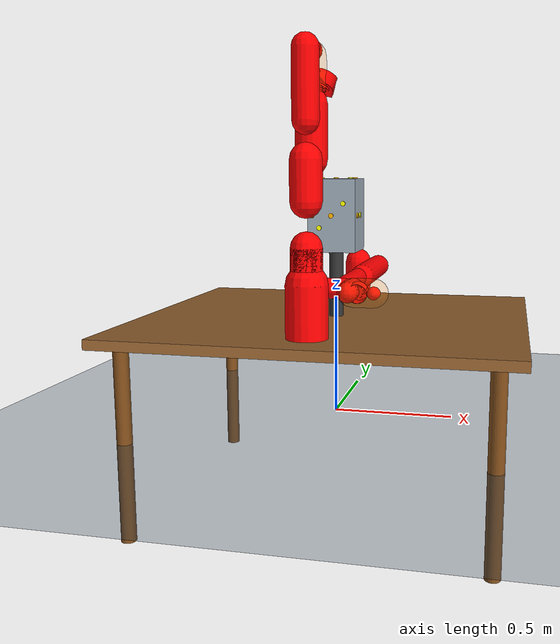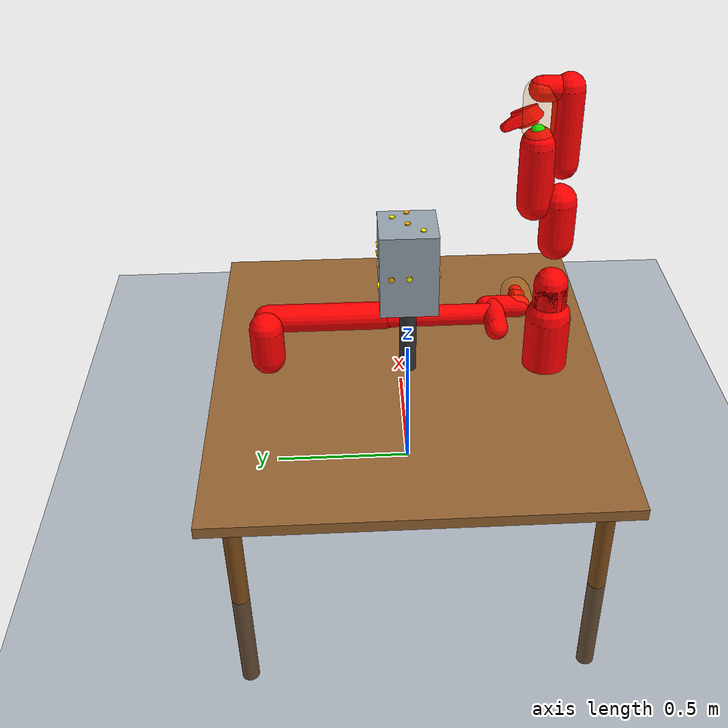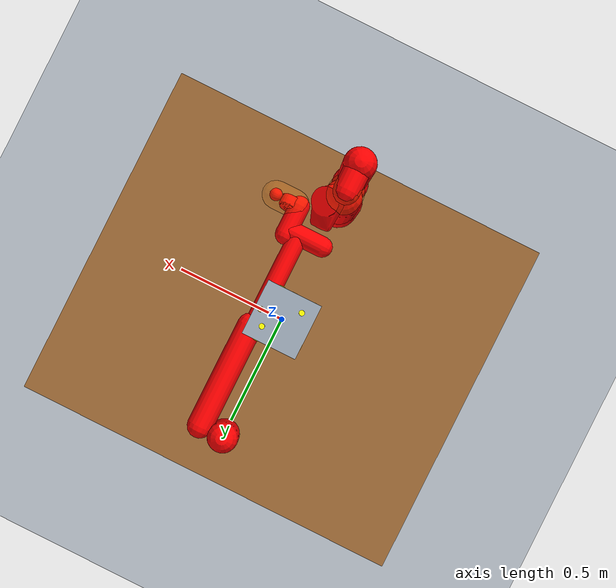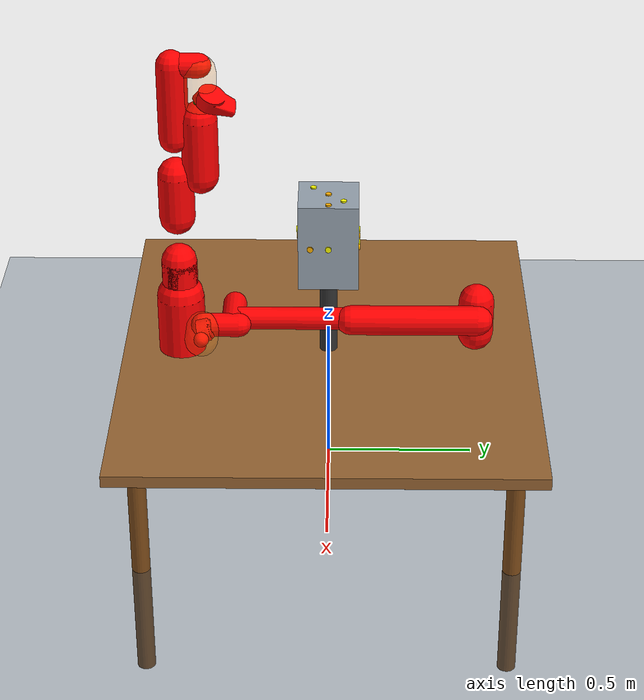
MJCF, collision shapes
<mujoco model="dual_arm_ur5e_fr3">
  <!-- 编译器设置 -->
  <compiler angle="radian" autolimits="true"/>

  <!-- 积分器设置 -->
  <option integrator="implicitfast" timestep="0.002"/>

  <!-- 统计信息：设置场景中心和范围 -->
  <statistic center="0 0 0.5" extent="2"/>

  <!-- 可视化设置 -->
  <visual>
    <headlight diffuse="0.6 0.6 0.6" ambient="0.3 0.3 0.3" specular="0 0 0"/>
    <rgba haze="0.15 0.25 0.35 1"/>
    <global azimuth="150" elevation="-30"/>
  </visual>

  <!-- 资源定义 -->
  <asset>
    <!-- 天空盒纹理 -->
    <texture type="skybox" builtin="gradient" rgb1="0.3 0.5 0.7" rgb2="0 0 0" width="512" height="3072"/>

    <!-- 地面纹理 -->
    <texture type="2d" name="groundplane" builtin="checker" mark="edge"
             rgb1="0.2 0.3 0.4" rgb2="0.1 0.2 0.3" markrgb="0.8 0.8 0.8" width="300" height="300"/>
    <material name="groundplane" texture="groundplane" texuniform="true" texrepeat="5 5" reflectance="0.2"/>

    <!-- 工作台纹理 -->
    <material name="table_mat" rgba="0.6 0.4 0.2 1"/>
    <material name="target_mat" rgba="1 0.2 0.2 0.6"/>

    <!-- 金属材质 -->
    <material name="metal_mat" rgba="0.6 0.65 0.7 1" specular="0.8" shininess="0.8"/>
    <material name="box_mat" rgba="0.2 0.6 0.8 1"/>
  </asset>

  <!-- UR5e 机械臂配置 (放置在左侧) -->
  <default>
    <default class="ur5e">
      <material specular="0.5" shininess="0.25"/>
      <joint axis="0 1 0" range="-6.28319 6.28319" armature="0.1"/>
      <general gaintype="fixed" biastype="affine" ctrlrange="-6.2831 6.2831"
               gainprm="2000" biasprm="0 -2000 -400" forcerange="-150 150"/>
      <default class="size3">
        <default class="size3_limited">
          <joint range="-3.1415 3.1415"/>
          <general ctrlrange="-3.1415 3.1415"/>
        </default>
      </default>
      <default class="size1">
        <general gainprm="500" biasprm="0 -500 -100" forcerange="-28 28"/>
      </default>
      <default class="visual">
        <geom type="mesh" contype="0" conaffinity="0" group="2"/>
      </default>
      <default class="collision">
        <geom type="capsule" group="3" rgba="1 0 0 0.2"/>
        <default class="eef_collision">
          <geom type="cylinder" rgba="1 0 0 0.2"/>
        </default>
      </default>
      <site size="0.02" rgba="1 0 0 1" group="0"/>
    </default>
  </default>

  <!-- FR3 机械臂配置 (放置在右侧) -->
  <default>
    <default class="fr3">
      <joint damping="0.21" armature="0.195" frictionloss="1.137"/>
      <default class="visual_fr3">
        <geom type="mesh" group="2" contype="0" conaffinity="0"/>
      </default>
      <default class="collision_fr3">
        <geom type="capsule" group="3" condim="3" contype="1" conaffinity="1"/>
      </default>
      <site size="0.02" rgba="0 1 0 1" group="0"/>
    </default>
  </default>

  <!-- UR5e 网格资源 -->
  <asset>
    <material class="ur5e" name="ur5e_black" rgba="0.033 0.033 0.033 1"/>
    <material class="ur5e" name="ur5e_jointgray" rgba="0.278 0.278 0.278 1"/>
    <material class="ur5e" name="ur5e_linkgray" rgba="0.82 0.82 0.82 1"/>
    <material class="ur5e" name="ur5e_urblue" rgba="0.49 0.678 0.8 1"/>

    <mesh file="universal_robots_ur5e/assets/base_0.obj"/>
    <mesh file="universal_robots_ur5e/assets/base_1.obj"/>
    <mesh file="universal_robots_ur5e/assets/shoulder_0.obj"/>
    <mesh file="universal_robots_ur5e/assets/shoulder_1.obj"/>
    <mesh file="universal_robots_ur5e/assets/shoulder_2.obj"/>
    <mesh file="universal_robots_ur5e/assets/upperarm_0.obj"/>
    <mesh file="universal_robots_ur5e/assets/upperarm_1.obj"/>
    <mesh file="universal_robots_ur5e/assets/upperarm_2.obj"/>
    <mesh file="universal_robots_ur5e/assets/upperarm_3.obj"/>
    <mesh file="universal_robots_ur5e/assets/forearm_0.obj"/>
    <mesh file="universal_robots_ur5e/assets/forearm_1.obj"/>
    <mesh file="universal_robots_ur5e/assets/forearm_2.obj"/>
    <mesh file="universal_robots_ur5e/assets/forearm_3.obj"/>
    <mesh file="universal_robots_ur5e/assets/wrist1_0.obj"/>
    <mesh file="universal_robots_ur5e/assets/wrist1_1.obj"/>
    <mesh file="universal_robots_ur5e/assets/wrist1_2.obj"/>
    <mesh file="universal_robots_ur5e/assets/wrist2_0.obj"/>
    <mesh file="universal_robots_ur5e/assets/wrist2_1.obj"/>
    <mesh file="universal_robots_ur5e/assets/wrist2_2.obj"/>
    <mesh file="universal_robots_ur5e/assets/wrist3.obj"/>
    <mesh name="wrist3_vhacd" file="universal_robots_ur5e/assets/wrist3_vhacd.obj"/>
  </asset>

  <!-- FR3 网格资源 -->
  <asset>
    <material name="fr3_black" rgba=".2 .2 .2 1"/>
    <material name="fr3_white" rgba="1 1 1 1"/>
    <material name="fr3_red" rgba="1 0.072272 0.039546 1"/>
    <material name="fr3_gray" rgba="0.863156 0.863156 0.863157 1"/>

    <mesh file="franka_fr3/assets/link0_0.obj"/>
    <mesh file="franka_fr3/assets/link0_1.obj"/>
    <mesh file="franka_fr3/assets/link0_2.obj"/>
    <mesh file="franka_fr3/assets/link0_3.obj"/>
    <mesh file="franka_fr3/assets/link0_4.obj"/>
    <mesh file="franka_fr3/assets/link0_5.obj"/>
    <mesh file="franka_fr3/assets/link0_6.obj"/>
    <mesh name="link0_coll" file="franka_fr3/assets/link0.stl"/>
    <mesh file="franka_fr3/assets/link1.obj"/>
    <mesh file="franka_fr3/assets/link2.obj"/>
    <mesh file="franka_fr3/assets/link3_0.obj"/>
    <mesh file="franka_fr3/assets/link3_1.obj"/>
    <mesh file="franka_fr3/assets/link4_0.obj"/>
    <mesh file="franka_fr3/assets/link4_1.obj"/>
    <mesh file="franka_fr3/assets/link5_0.obj"/>
    <mesh file="franka_fr3/assets/link5_1.obj"/>
    <mesh file="franka_fr3/assets/link5_2.obj"/>
    <mesh file="franka_fr3/assets/link6_0.obj"/>
    <mesh file="franka_fr3/assets/link6_1.obj"/>
    <mesh file="franka_fr3/assets/link6_2.obj"/>
    <mesh file="franka_fr3/assets/link6_3.obj"/>
    <mesh file="franka_fr3/assets/link6_4.obj"/>
    <mesh file="franka_fr3/assets/link6_5.obj"/>
    <mesh file="franka_fr3/assets/link6_6.obj"/>
    <mesh file="franka_fr3/assets/link6_7.obj"/>
    <mesh file="franka_fr3/assets/link7_0.obj"/>
    <mesh file="franka_fr3/assets/link7_1.obj"/>
    <mesh file="franka_fr3/assets/link7_2.obj"/>
    <mesh file="franka_fr3/assets/link7_3.obj"/>
    <mesh name="link7_vhacd" file="franka_fr3/assets/link7_vhacd.obj"/>
  </asset>

  <!-- 世界体定义 -->
  <worldbody>
    <!-- 照明 -->
    <light pos="0 0 2.5" dir="0 0 -1" directional="true"/>
    <light pos="1 1 2" dir="-1 -1 -1" directional="false"/>

    <!-- 地面 -->
    <geom name="floor" size="0 0 0.05" type="plane" material="groundplane"/>

    <!-- 工作台 -->
    <body name="table" pos="0 0 0">
      <geom name="table_top" type="box" size="0.8 0.7 0.02" pos="0 0 0.4" material="table_mat"/>
      <geom name="table_leg1" type="cylinder" size="0.03 0.4" pos="0.7 0.6 0" rgba="0.5 0.3 0.1 1"/>
      <geom name="table_leg2" type="cylinder" size="0.03 0.4" pos="0.7 -0.6 0" rgba="0.5 0.3 0.1 1"/>
      <geom name="table_leg3" type="cylinder" size="0.03 0.4" pos="-0.7 0.6 0" rgba="0.5 0.3 0.1 1"/>
      <geom name="table_leg4" type="cylinder" size="0.03 0.4" pos="-0.7 -0.6 0" rgba="0.5 0.3 0.1 1"/>
    </body>

    <!-- 中央工件：待作业的多面体刚体 -->
    <body name="workpiece" pos="0 0 0.85">
      <geom name="workpiece_geom" type="box" size="0.1 0.1 0.15" material="metal_mat" contype="1" conaffinity="1"/>

      <geom name="workpiece_support" type="cylinder" size="0.03 0.14" pos="0 0 -0.29" rgba="0.2 0.2 0.2 1" contype="0" conaffinity="0"/>

      <site name="target_top_1" pos="0.05 0.05 0.15" euler="0 0 0" type="cylinder" size="0.01 0.005" rgba="1 1 0 1" group="0"/>
      <site name="target_top_2" pos="-0.05 -0.05 0.15" euler="0 0 0" type="cylinder" size="0.01 0.005" rgba="1 1 0 1" group="0"/>
      <site name="target_top_3" pos="0.0 0.0 0.15" euler="0 0 0" type="cylinder" size="0.01 0.005" rgba="1 0.7 0 1" group="0"/>
      <site name="target_top_4" pos="0.08 0.0 0.15" euler="0 0 0" type="cylinder" size="0.01 0.005" rgba="1 0.7 0 1" group="0"/>

      <site name="target_front_1" pos="0.05 0.1 0.05" euler="1.5708 0 0" type="cylinder" size="0.01 0.005" rgba="1 1 0 1" group="0"/>
      <site name="target_front_2" pos="-0.05 0.1 -0.05" euler="1.5708 0 0" type="cylinder" size="0.01 0.005" rgba="1 1 0 1" group="0"/>
      <site name="target_front_3" pos="0.0 0.1 0.0" euler="1.5708 0 0" type="cylinder" size="0.01 0.005" rgba="1 0.7 0 1" group="0"/>
      <site name="target_front_4" pos="0.08 0.1 0.0" euler="1.5708 0 0" type="cylinder" size="0.01 0.005" rgba="1 0.7 0 1" group="0"/>

      <site name="target_back_1" pos="0.05 -0.1 0.05" euler="-1.5708 0 0" type="cylinder" size="0.01 0.005" rgba="1 1 0 1" group="0"/>
      <site name="target_back_2" pos="-0.05 -0.1 -0.05" euler="-1.5708 0 0" type="cylinder" size="0.01 0.005" rgba="1 1 0 1" group="0"/>
      <site name="target_back_3" pos="0.0 -0.1 0.0" euler="-1.5708 0 0" type="cylinder" size="0.01 0.005" rgba="1 0.7 0 1" group="0"/>
      <site name="target_back_4" pos="-0.08 -0.1 0.0" euler="-1.5708 0 0" type="cylinder" size="0.01 0.005" rgba="1 0.7 0 1" group="0"/>

      <site name="target_left_1" pos="-0.1 0 0" euler="0 -1.5708 0" type="cylinder" size="0.01 0.005" rgba="1 1 0 1" group="0"/>
      <site name="target_right_1" pos="0.1 0 0" euler="0 -1.5708 0" type="cylinder" size="0.01 0.005" rgba="1 1 0 1" group="0"/>
      <site name="target_left_2" pos="-0.1 0.06 0.0" euler="0 -1.5708 0" type="cylinder" size="0.01 0.005" rgba="1 0.7 0 1" group="0"/>
      <site name="target_right_2" pos="0.1 -0.06 0.0" euler="0 -1.5708 0" type="cylinder" size="0.01 0.005" rgba="1 0.7 0 1" group="0"/>

      <site name="target_bottom_1" pos="0.05 0.05 -0.15" euler="3.14159 0 0" type="cylinder" size="0.01 0.005" rgba="1 1 0 1" group="0"/>
      <site name="target_bottom_2" pos="-0.05 -0.05 -0.15" euler="3.14159 0 0" type="cylinder" size="0.01 0.005" rgba="1 1 0 1" group="0"/>
    </body>

    <!-- UR5e 机械臂 (左侧，面向工作台中心) -->
    <body name="ur5e_base" pos="0 0.50 0.42" euler="0 0 -1.5708" childclass="ur5e">
      <inertial mass="4.0" pos="0 0 0" diaginertia="0.00443333156 0.00443333156 0.0072"/>
      <geom mesh="base_0" material="ur5e_black" class="visual"/>
      <geom mesh="base_1" material="ur5e_jointgray" class="visual"/>
      <body name="ur5e_shoulder_link" pos="0 0 0.163">
        <inertial mass="3.7" pos="0 0 0" diaginertia="0.0102675 0.0102675 0.00666"/>
        <joint name="ur5e_shoulder_pan_joint" class="size3" axis="0 0 1"/>
        <geom mesh="shoulder_0" material="ur5e_urblue" class="visual"/>
        <geom mesh="shoulder_1" material="ur5e_black" class="visual"/>
        <geom mesh="shoulder_2" material="ur5e_jointgray" class="visual"/>
        <geom class="collision" size="0.06 0.06" pos="0 0 -0.04"/>
        <body name="ur5e_upper_arm_link" pos="0 0.138 0" quat="1 0 1 0">
          <inertial mass="8.393" pos="0 0 0.2125" diaginertia="0.133886 0.133886 0.0151074"/>
          <joint name="ur5e_shoulder_lift_joint" class="size3"/>
          <geom mesh="upperarm_0" material="ur5e_linkgray" class="visual"/>
          <geom mesh="upperarm_1" material="ur5e_black" class="visual"/>
          <geom mesh="upperarm_2" material="ur5e_jointgray" class="visual"/>
          <geom mesh="upperarm_3" material="ur5e_urblue" class="visual"/>
          <geom class="collision" fromto="0 -0.04 0 0 -0.04 0.425" size="0.05"/>
          <body name="ur5e_forearm_link" pos="0 -0.131 0.425">
            <inertial mass="2.275" pos="0 0 0.196" diaginertia="0.0311796 0.0311796 0.004095"/>
            <joint name="ur5e_elbow_joint" class="size3"/>
            <geom mesh="forearm_0" material="ur5e_urblue" class="visual"/>
            <geom mesh="forearm_1" material="ur5e_linkgray" class="visual"/>
            <geom mesh="forearm_2" material="ur5e_black" class="visual"/>
            <geom mesh="forearm_3" material="ur5e_jointgray" class="visual"/>
            <geom class="collision" fromto="0 0.08 0 0 0.08 0.392" size="0.038"/>
            <body name="ur5e_wrist_1_link" pos="0 0 0.392">
              <inertial mass="1.219" pos="0 0.127 0" diaginertia="0.0025599 0.0025599 0.0021942"/>
              <joint name="ur5e_wrist_1_joint" class="size1" axis="0 1 0"/>
              <geom mesh="wrist1_0" material="ur5e_black" class="visual"/>
              <geom mesh="wrist1_1" material="ur5e_urblue" class="visual"/>
              <geom mesh="wrist1_2" material="ur5e_jointgray" class="visual"/>
              <geom class="collision" pos="0 0.05 0" quat="0.707107 0.707107 0 0" size="0.04 0.07"/>
              <body name="ur5e_wrist_2_link" pos="0 0.127 0">
                <inertial mass="1.219" pos="0 0 0.1" diaginertia="0.0025599 0.0025599 0.0021942"/>
                <joint name="ur5e_wrist_2_joint" class="size1" axis="0 0 1"/>
                <geom mesh="wrist2_0" material="ur5e_black" class="visual"/>
                <geom mesh="wrist2_1" material="ur5e_urblue" class="visual"/>
                <geom mesh="wrist2_2" material="ur5e_jointgray" class="visual"/>
                <geom class="collision" size="0.04 0.06" pos="0 0 0.04"/>
                <body name="ur5e_wrist_3_link" pos="0 0 0.1">
                  <inertial mass="0.1879" pos="0 0.0771683 0" quat="0.707107 0 0 0.707107"
                    diaginertia="0.000132134 9.90863e-05 9.90863e-05"/>
                  <joint name="ur5e_wrist_3_joint" class="size1" axis="0 1 0"/>
                  <geom material="ur5e_linkgray" mesh="wrist3" class="visual"/>
                  <geom name="ur5e_wrist3_vhacd_col" class="collision" type="mesh" mesh="wrist3_vhacd"
                        pos="0.015085743 0.039539305 0.065289590"
                        quat="0.700903278 -0.704282049 0.080116196 0.079390086"
                        rgba="1 0 0 0.25"/>
                  <geom name="ur5e_wrist3_capsule_col" class="collision" type="capsule"
                    fromto="0 0.02 0  0 0.10 0" size="0.055"
                    contype="0" conaffinity="0" rgba="1 0.5 0 0.18"/>
                  <site name="ur5e_ee_site" pos="0 0.1 0" euler="-1.5708 0 0" size="0.025" rgba="1 0 0 1" group="0"/>
                </body>
              </body>
            </body>
          </body>
        </body>
      </body>
    </body>

    <!-- FR3 机械臂 (右侧，面向工作台中心) -->
    <body name="fr3_base" pos="0 -0.50 0.42" euler="0 0 1.5708" childclass="fr3">
      <body name="fr3_link0">
        <geom mesh="link0_0" material="fr3_black" class="visual_fr3"/>
        <geom mesh="link0_1" material="fr3_white" class="visual_fr3"/>
        <geom mesh="link0_2" material="fr3_white" class="visual_fr3"/>
        <geom mesh="link0_3" material="fr3_white" class="visual_fr3"/>
        <geom mesh="link0_4" material="fr3_white" class="visual_fr3"/>
        <geom mesh="link0_5" material="fr3_red" class="visual_fr3"/>
        <geom mesh="link0_6" material="fr3_black" class="visual_fr3"/>
        <!-- 碰撞胶囊体 -->
        <geom name="fr3_link0_col" class="collision_fr3" type="capsule" size="0.08" fromto="0 0 0  0 0 0.2" rgba="1 0 0 0.2"/>
        <body name="fr3_link1" pos="0 0 0.333">
          <inertial pos="0.000206 -0.00067 0.067048" quat="0.388082 0.653008 -0.647363 0.0882461"
            mass="4.970684" diaginertia="0.70696 0.70536 0.00954"/>
          <joint name="fr3_joint1" axis="0 0 1" range="-2.7437 2.7437"/>
          <geom material="fr3_white" mesh="link1" class="visual_fr3"/>
          <!-- 碰撞胶囊体 -->
          <geom name="fr3_link1_col" class="collision_fr3" type="capsule" size="0.06" fromto="0 0 0  0 0 -0.19" rgba="1 0 0 0.2"/>
          <body name="fr3_link2" quat="1 -1 0 0">
            <inertial pos="-0.000197 -0.033735 0.028718" quat="0.934982 0.000916 -0.354607 0.00285"
              mass="0.646926" diaginertia="0.00798 0.00756 0.00135"/>
            <joint name="fr3_joint2" axis="0 0 1" range="-1.7837 1.7837"/>
            <geom material="fr3_white" mesh="link2" class="visual_fr3"/>
            <!-- 碰撞胶囊体 -->
            <geom name="fr3_link2_col" class="collision_fr3" type="capsule" size="0.06" fromto="0 0 0  0 0.2 0" rgba="1 0 0 0.2"/>
            <body name="fr3_link3" pos="0 -0.316 0" quat="1 1 0 0">
              <inertial pos="0.026947 0.029724 -0.069176" quat="0.959011 -0.277741 0.0528642 0.0155736"
                mass="3.228604" diaginertia="0.0372 0.036 0.00506"/>
              <joint name="fr3_joint3" axis="0 0 1" range="-2.9007 2.9007"/>
              <geom mesh="link3_0" material="fr3_white" class="visual_fr3"/>
              <geom mesh="link3_1" material="fr3_white" class="visual_fr3"/>
              <!-- 碰撞胶囊体 -->
              <geom name="fr3_link3_col" class="collision_fr3" type="capsule" size="0.06" fromto="0 0 0  0 0 -0.15" rgba="1 0 0 0.2"/>
              <body name="fr3_link4" pos="0.0825 0 0" quat="1 1 0 0">
                <inertial pos="-0.053043 0.104432 0.026687" quat="0.920992 0.380087 -0.0891638 0.00429838"
                  mass="3.587895" diaginertia="0.0255 0.0252 0.00696"/>
                <joint name="fr3_joint4" axis="0 0 1" range="-3.0421 -0.1518"/>
                <geom mesh="link4_0" material="fr3_white" class="visual_fr3"/>
                <geom mesh="link4_1" material="fr3_white" class="visual_fr3"/>
                <!-- 碰撞胶囊体 -->
                <geom name="fr3_link4_col" class="collision_fr3" type="capsule" size="0.06" fromto="0 0 0  0 0.2 0" rgba="1 0 0 0.2"/>
                <body name="fr3_link5" pos="-0.0825 0.384 0" quat="1 -1 0 0">
                  <inertial pos="0.000113 0.0448 -0.038482" quat="0.722794 0.003309 0.00406 0.691047"
                    mass="1.225946" diaginertia="0.0358 0.0348 0.00128"/>
                  <joint name="fr3_joint5" axis="0 0 1" range="-2.8065 2.8065" damping="0.168" armature="0.156" frictionloss="0.909"/>
                  <geom mesh="link5_0" material="fr3_white" class="visual_fr3"/>
                  <geom mesh="link5_1" material="fr3_white" class="visual_fr3"/>
                  <geom mesh="link5_2" material="fr3_gray" class="visual_fr3"/>
                  <!-- 碰撞胶囊体 -->
                  <geom name="fr3_link5_col" class="collision_fr3" type="capsule" size="0.05" fromto="0 0 0  0 0 -0.25" rgba="1 0 0 0.2"/>
                  <body name="fr3_link6" quat="1 1 0 0">
                    <inertial pos="0.051019 0.009112 0.010635" quat="0.474046 0.880129 -0.00493805 0.0172025"
                      mass="1.666555" diaginertia="0.00457 0.00426 0.00313"/>
                    <joint name="fr3_joint6" axis="0 0 1" range="0.5445 4.5169" damping="0.168" armature="0.156" frictionloss="0.909"/>
                    <geom mesh="link6_0" material="fr3_white" class="visual_fr3"/>
                    <geom mesh="link6_1" material="fr3_white" class="visual_fr3"/>
                    <geom mesh="link6_2" material="fr3_gray" class="visual_fr3"/>
                    <geom mesh="link6_3" material="fr3_gray" class="visual_fr3"/>
                    <geom mesh="link6_4" material="fr3_black" class="visual_fr3"/>
                    <geom mesh="link6_5" material="fr3_white" class="visual_fr3"/>
                    <geom mesh="link6_6" material="fr3_gray" class="visual_fr3"/>
                    <geom mesh="link6_7" material="fr3_black" class="visual_fr3"/>
                    <!-- 碰撞胶囊体 -->
                    <geom name="fr3_link6_col" class="collision_fr3" type="capsule" size="0.04" fromto="0 0 0  0.088 0 0" rgba="1 0 0 0.2"/>
                    <body name="fr3_link7" pos="0.088 0 0" quat="1 1 0 0">
                      <inertial pos="0.010587 0.010588 0.06424" quat="0.704858 0.0571316 0.0571293 0.704858"
                        mass="0.735522" diaginertia="0.00125 0.00117 0.00116"/>
                      <joint name="fr3_joint7" axis="0 0 1" range="-3.0159 3.0159" damping="0.084" armature="0.078" frictionloss="0.454"/>
                      <geom mesh="link7_0" material="fr3_black" class="visual_fr3"/>
                      <geom mesh="link7_1" material="fr3_black" class="visual_fr3"/>
                      <geom mesh="link7_2" material="fr3_white" class="visual_fr3"/>
                      <geom mesh="link7_3" material="fr3_white" class="visual_fr3"/>
                          <!-- Stage-1A: 末端改为 V-HACD（含对齐补偿） -->
                          <geom name="fr3_link7_col" class="collision_fr3" type="mesh" mesh="link7_vhacd"
                            pos="0.059280232 0.059323968 0.032891274"
                            quat="0.889246118 0.215038024 -0.082758289 -0.395159531"
                            rgba="1 0 0 0.25"/>
                          <geom name="fr3_link7_capsule_col" class="collision_fr3" type="capsule"
                            fromto="0 0 0.02  0 0 0.12" size="0.055"
                            contype="0" conaffinity="0" rgba="1 0.5 0 0.18"/>
                      <site name="fr3_ee_site" pos="0 0 0.14" quat="0.92388 0 0 -0.382683" size="0.025" rgba="0 1 0 1" group="0"/>
                    </body>
                  </body>
                </body>
              </body>
            </body>
          </body>
        </body>
      </body>
    </body>

  </worldbody>

  <contact>
    <!-- FR3 相邻/近邻连杆的胶囊体会在默认姿态下发生虚假自碰撞，
         导致控制器被持续顶住，实际无法跟踪到 IK 目标位。 -->
    <exclude body1="fr3_link0" body2="fr3_link1"/>
    <exclude body1="fr3_link0" body2="fr3_link2"/>
    <exclude body1="fr3_link1" body2="fr3_link2"/>
    <exclude body1="fr3_link2" body2="fr3_link3"/>
    <exclude body1="fr3_link3" body2="fr3_link4"/>
    <exclude body1="fr3_link4" body2="fr3_link5"/>
    <exclude body1="fr3_link5" body2="fr3_link6"/>
    <exclude body1="fr3_link5" body2="fr3_link7"/>
    <exclude body1="fr3_link6" body2="fr3_link7"/>
  </contact>

  <!-- 执行器定义 -->
  <actuator>
    <!-- UR5e 执行器 (统一为position控制) -->
    <position class="size3" name="ur5e_shoulder_pan" joint="ur5e_shoulder_pan_joint" ctrlrange="-6.2831 6.2831" kp="4500" kv="150"/>
    <position class="size3" name="ur5e_shoulder_lift" joint="ur5e_shoulder_lift_joint" ctrlrange="-6.2831 6.2831" kp="4500" kv="150"/>
    <position class="size3" name="ur5e_elbow" joint="ur5e_elbow_joint" ctrlrange="-3.1415 3.1415" kp="3500" kv="100"/>
    <position class="size1" name="ur5e_wrist_1" joint="ur5e_wrist_1_joint" ctrlrange="-6.2831 6.2831" kp="2000" kv="50"/>
    <position class="size1" name="ur5e_wrist_2" joint="ur5e_wrist_2_joint" ctrlrange="-6.2831 6.2831" kp="2000" kv="50"/>
    <position class="size1" name="ur5e_wrist_3" joint="ur5e_wrist_3_joint" ctrlrange="-6.2831 6.2831" kp="2000" kv="50"/>

    <!-- FR3 执行器 (添加阻尼kv) -->
    <position class="fr3" name="fr3_actuator1" joint="fr3_joint1" ctrlrange="-2.8973 2.8973" kp="7000" kv="220"/>
    <position class="fr3" name="fr3_actuator2" joint="fr3_joint2" ctrlrange="-1.7628 1.7628" kp="7000" kv="220"/>
    <position class="fr3" name="fr3_actuator3" joint="fr3_joint3" ctrlrange="-2.8973 2.8973" kp="5500" kv="160"/>
    <position class="fr3" name="fr3_actuator4" joint="fr3_joint4" ctrlrange="-3.0718 -0.0698" kp="5500" kv="160"/>
    <position class="fr3" name="fr3_actuator5" joint="fr3_joint5" ctrlrange="-2.8973 2.8973" kp="3000" kv="90"/>
    <position class="fr3" name="fr3_actuator6" joint="fr3_joint6" ctrlrange="-0.0175 3.7525" kp="3000" kv="90"/>
    <position class="fr3" name="fr3_actuator7" joint="fr3_joint7" ctrlrange="-2.8973 2.8973" kp="3000" kv="90"/>
  </actuator>

  <!-- 传感器定义 -->
  <sensor>
    <!-- UR5e 关节位置传感器 -->
    <jointpos name="ur5e_joint1_pos" joint="ur5e_shoulder_pan_joint"/>
    <jointpos name="ur5e_joint2_pos" joint="ur5e_shoulder_lift_joint"/>
    <jointpos name="ur5e_joint3_pos" joint="ur5e_elbow_joint"/>
    <jointpos name="ur5e_joint4_pos" joint="ur5e_wrist_1_joint"/>
    <jointpos name="ur5e_joint5_pos" joint="ur5e_wrist_2_joint"/>
    <jointpos name="ur5e_joint6_pos" joint="ur5e_wrist_3_joint"/>

    <!-- FR3 关节位置传感器 -->
    <jointpos name="fr3_joint1_pos" joint="fr3_joint1"/>
    <jointpos name="fr3_joint2_pos" joint="fr3_joint2"/>
    <jointpos name="fr3_joint3_pos" joint="fr3_joint3"/>
    <jointpos name="fr3_joint4_pos" joint="fr3_joint4"/>
    <jointpos name="fr3_joint5_pos" joint="fr3_joint5"/>
    <jointpos name="fr3_joint6_pos" joint="fr3_joint6"/>
    <jointpos name="fr3_joint7_pos" joint="fr3_joint7"/>

    <!-- 末端执行器位置传感器 -->
    <framepos name="ur5e_ee_pos" objtype="site" objname="ur5e_ee_site"/>
    <framepos name="fr3_ee_pos" objtype="site" objname="fr3_ee_site"/>
  </sensor>

  <!-- 初始关节配置 -->
  <keyframe>
    <key name="home"
         qpos="0 -1.57 0 -1.57 0 0
               0 -0.785 0 -2.356 0 1.571 0.785"/>
  </keyframe>

</mujoco>
